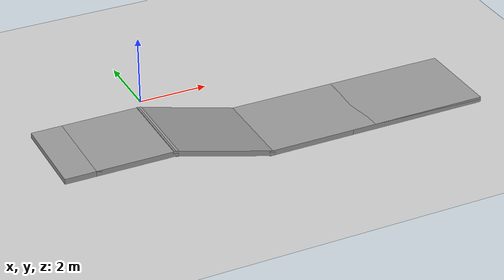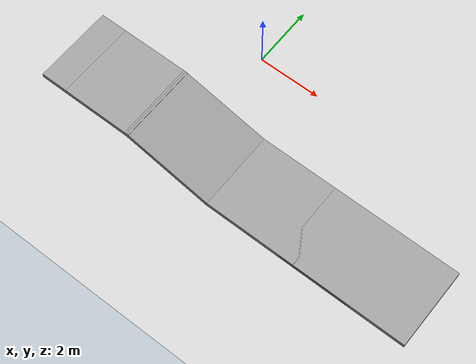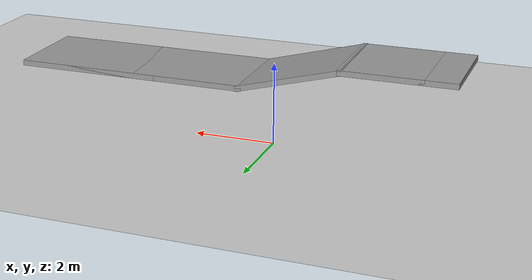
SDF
<sdf version="1.6">
 <world name="default">
  <light name="sun" type="directional">
   <pose>0 0 10 0 -0 0</pose>
   <diffuse>0.8 0.8 0.8 1</diffuse>
   <specular>0.2 0.2 0.2 1</specular>
   <attenuation>
    <range>1000</range>
    <constant>0.9</constant>
    <linear>0.01</linear>
    <quadratic>0.001</quadratic>
   </attenuation>
   <direction>-0.5 0.1 -0.9</direction>
  </light>
  <model name="ground_plane">
   <static>1</static>
   <link name="link">
    <collision name="collision">
     <geometry><plane><normal>0 0 1</normal><size>100 100</size></plane></geometry>
     <surface>
      <contact><collide_bitmask>65535</collide_bitmask></contact>
      <friction><ode><mu>100</mu><mu2>50</mu2></ode></friction>
     </surface>
    </collision>
    <visual name="visual">
     <cast_shadows>0</cast_shadows>
     <geometry><plane><normal>0 0 1</normal><size>100 100</size></plane></geometry>
     <material>
      <script><uri>file://media/materials/scripts/gazebo.material</uri><name>Gazebo/Grey</name></script>
     </material>
    </visual>
   </link>
  </model>
  <gravity>0 0 -9.8</gravity>
  <magnetic_field>6e-06 2.3e-05 -4.2e-05</magnetic_field>
  <atmosphere type="adiabatic"/>
  <physics name="default_physics" default="0" type="ode">
   <max_step_size>0.001</max_step_size>
   <real_time_factor>1</real_time_factor>
   <real_time_update_rate>1000</real_time_update_rate>
  </physics>
  <scene><ambient>0.4 0.4 0.4 1</ambient><background>0.7 0.7 0.7 1</background><shadows>1</shadows></scene>
  <audio><device>default</device></audio>
  <spherical_coordinates>
   <surface_model>EARTH_WGS84</surface_model>
   <latitude_deg>0</latitude_deg>
   <longitude_deg>0</longitude_deg>
   <elevation>0</elevation>
   <heading_deg>0</heading_deg>
  </spherical_coordinates>
  <model name="Untitled">
   <pose>2.13802 -2.25105 0.829202 1.56065 -0 0</pose>
   <link name="Wall_10">
    <collision name="Wall_10_Collision">
     <geometry><box><size>2.25 0.15 2.5</size></box></geometry>
     <pose>0 0 1.25 0 -0 0</pose>
    </collision>
    <visual name="Wall_10_Visual">
     <pose>0 0 1.25 0 -0 0</pose>
     <geometry><box><size>2.25 0.15 2.5</size></box></geometry>
     <material>
      <script><uri>file://media/materials/scripts/gazebo.material</uri><name>Gazebo/Grey</name></script>
      <ambient>1 1 1 1</ambient>
     </material>
     <meta><layer>0</layer></meta>
    </visual>
    <pose>-4.12644 0.368817 0 0 -0 3.14159</pose>
   </link>
   <link name="Wall_11">
    <collision name="Wall_11_Collision">
     <geometry><box><size>1 0.15 2.5</size></box></geometry>
     <pose>0 0 1.25 0 -0 0</pose>
    </collision>
    <visual name="Wall_11_Visual">
     <pose>0 0 1.25 0 -0 0</pose>
     <geometry><box><size>1 0.15 2.5</size></box></geometry>
     <material>
      <script><uri>file://media/materials/scripts/gazebo.material</uri><name>Gazebo/Grey</name></script>
      <ambient>0 0 0 1</ambient>
     </material>
     <meta><layer>0</layer></meta>
    </visual>
    <pose>-5.60144 0.368817 0 0 -0 3.14159</pose>
   </link>
   <link name="Wall_7">
    <collision name="Wall_7_Collision">
     <geometry><box><size>4 0.15 2.5</size></box></geometry>
     <pose>0 0 1.25 0 -0 0</pose>
    </collision>
    <visual name="Wall_7_Visual">
     <pose>0 0 1.25 0 -0 0</pose>
     <geometry><box><size>4 0.15 2.5</size></box></geometry>
     <material>
      <script><uri>file://media/materials/scripts/gazebo.material</uri><name>Gazebo/Grey</name></script>
      <ambient>1 1 1 1</ambient>
     </material>
     <meta><layer>0</layer></meta>
    </visual>
    <pose>4.10144 -0.368817 0 0 -0 0</pose>
   </link>
   <link name="Wall_8">
    <collision name="Wall_8_Collision">
     <geometry><box><size>6.5 0.15 2.5</size></box></geometry>
     <pose>0 0 1.25 0 -0 0</pose>
    </collision>
    <visual name="Wall_8_Visual">
     <pose>0 0 1.25 0 -0 0</pose>
     <geometry><box><size>6.5 0.15 2.5</size></box></geometry>
     <material>
      <script><uri>file://media/materials/scripts/gazebo.material</uri><name>Gazebo/Grey</name></script>
      <ambient>1 1 1 1</ambient>
     </material>
     <meta><layer>0</layer></meta>
    </visual>
    <pose>2.85144 -0.368817 0 0 -0 3.14159</pose>
   </link>
   <link name="Wall_9">
    <collision name="Wall_9_Collision">
     <geometry><box><size>3 0.15 2.5</size></box></geometry>
     <pose>0 0 1.25 0 -0 0</pose>
    </collision>
    <visual name="Wall_9_Visual">
     <pose>0 0 1.25 0 -0 0</pose>
     <geometry><box><size>3 0.15 2.5</size></box></geometry>
     <material>
      <script><uri>file://media/materials/scripts/gazebo.material</uri><name>Gazebo/Grey</name></script>
      <ambient>1 1 1 1</ambient>
     </material>
     <meta><layer>0</layer></meta>
    </visual>
    <pose>-1.7 -0 0 0 -0 2.87979</pose>
   </link>
   <static>1</static>
  </model>
 </world>
</sdf>
